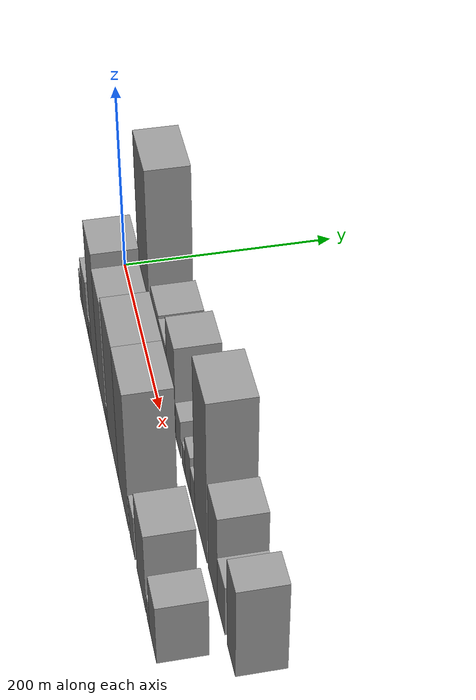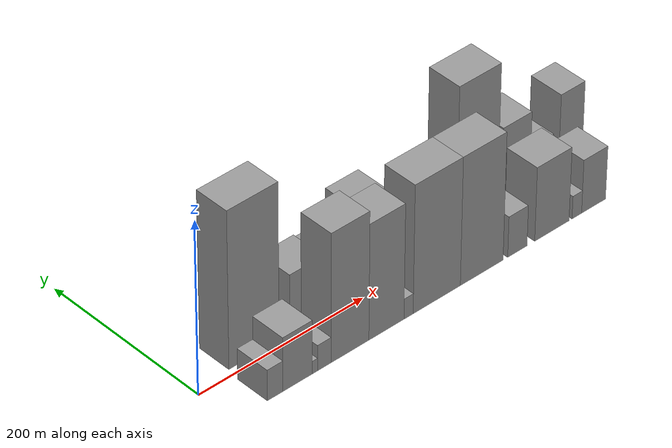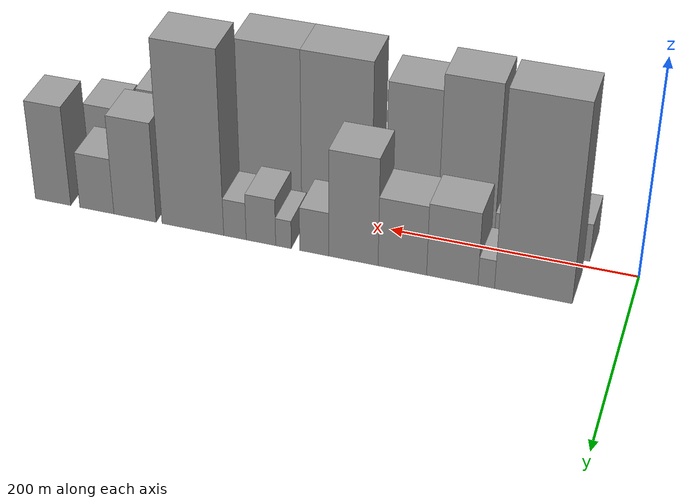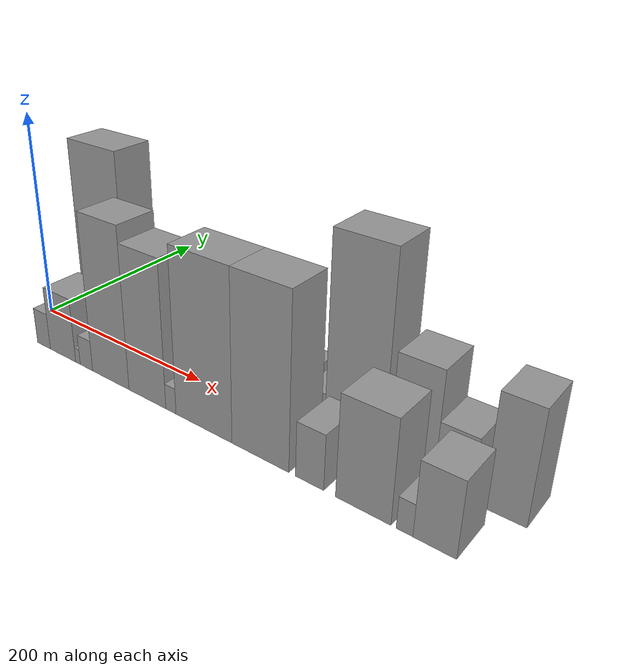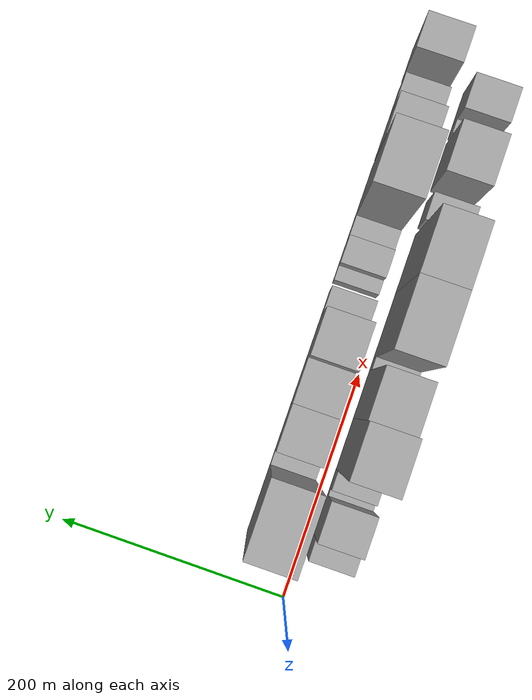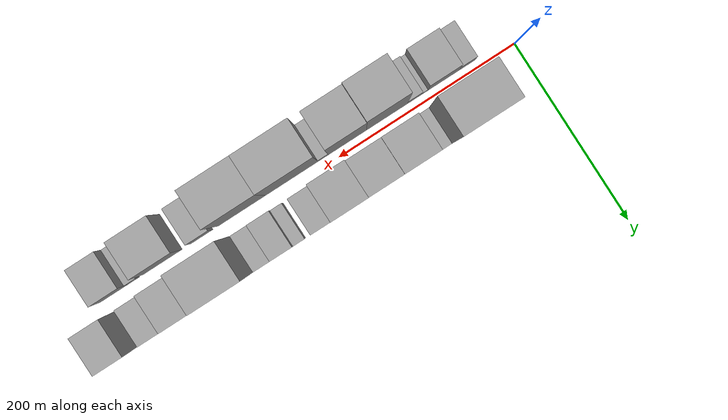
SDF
<sdf version="1.6">
 <world name="default">
  <scene>
   <sky><clouds><speed>12</speed></clouds></sky>
   <ambient>0.4 0.4 0.4 1</ambient>
   <background>0.7 0.7 0.7 1</background>
   <shadows>1</shadows>
  </scene>
  <gravity>0 0 -9.8066</gravity>
  <magnetic_field>6e-06 2.3e-05 -4.2e-05</magnetic_field>
  <physics default="0" name="default_physics" type="ode">
   <ode>
    <solver>
     <type>quick</type>
     <iters>10</iters>
     <sor>1.0</sor>
     <use_dynamic_moi_rescaling>0</use_dynamic_moi_rescaling>
    </solver>
    <constraints>
     <cfm>0</cfm>
     <erp>0.2</erp>
     <contact_max_correcting_vel>100</contact_max_correcting_vel>
     <contact_surface_layer>0.001</contact_surface_layer>
    </constraints>
   </ode>
   <max_step_size>0.004</max_step_size>
   <real_time_factor>1</real_time_factor>
   <real_time_update_rate>250</real_time_update_rate>
  </physics>
  <light name="sun" type="directional">
   <pose>0 0 10 0 0 0</pose>
   <diffuse>0.8 0.8 0.8 1</diffuse>
   <specular>0.2 0.2 0.2 1</specular>
   <attenuation>
    <range>1000</range>
    <constant>0.9</constant>
    <linear>0.01</linear>
    <quadratic>0.001</quadratic>
   </attenuation>
   <direction>-0.5 0.1 -0.9</direction>
  </light>
  <model name="building_1">
   <static>1</static>
   <pose>73.2922 27.5000 0 0.000000 0.000000 1.570796</pose>
   <link name="link">
    <pose>0 0 91.50 0 0 0</pose>
    <collision name="collision"><geometry><box><size>40.0000 60.5845 183.0000</size></box></geometry></collision>
    <visual name="visual">
     <cast_shadows>0</cast_shadows>
     <geometry><box><size>40.0000 60.5845 183.0000</size></box></geometry>
     <material>
      <script>
       <uri>model://grey_wall/materials/scripts</uri>
       <uri>model://grey_wall/materials/textures</uri>
       <name>vrc/grey_wall</name>
      </script>
     </material>
    </visual>
   </link>
  </model>
  <model name="building_2">
   <static>1</static>
   <pose>110.1360 27.5000 0 0.000000 0.000000 1.570796</pose>
   <link name="link">
    <pose>0 0 13.50 0 0 0</pose>
    <collision name="collision"><geometry><box><size>40.0000 13.1030 27.0000</size></box></geometry></collision>
    <visual name="visual">
     <cast_shadows>0</cast_shadows>
     <geometry><box><size>40.0000 13.1030 27.0000</size></box></geometry>
     <material>
      <script>
       <uri>model://grey_wall/materials/scripts</uri>
       <uri>model://grey_wall/materials/textures</uri>
       <name>vrc/grey_wall</name>
      </script>
     </material>
    </visual>
   </link>
  </model>
  <model name="building_3">
   <static>1</static>
   <pose>137.1209 27.5000 0 0.000000 0.000000 1.570796</pose>
   <link name="link">
    <pose>0 0 34.50 0 0 0</pose>
    <collision name="collision"><geometry><box><size>40.0000 40.8669 69.0000</size></box></geometry></collision>
    <visual name="visual">
     <cast_shadows>0</cast_shadows>
     <geometry><box><size>40.0000 40.8669 69.0000</size></box></geometry>
     <material>
      <script>
       <uri>model://grey_wall/materials/scripts</uri>
       <uri>model://grey_wall/materials/textures</uri>
       <name>vrc/grey_wall</name>
      </script>
     </material>
    </visual>
   </link>
  </model>
  <model name="building_4">
   <static>1</static>
   <pose>177.1733 27.5000 0 0.000000 0.000000 1.570796</pose>
   <link name="link">
    <pose>0 0 33.00 0 0 0</pose>
    <collision name="collision"><geometry><box><size>40.0000 39.2379 66.0000</size></box></geometry></collision>
    <visual name="visual">
     <cast_shadows>0</cast_shadows>
     <geometry><box><size>40.0000 39.2379 66.0000</size></box></geometry>
     <material>
      <script>
       <uri>model://grey_wall/materials/scripts</uri>
       <uri>model://grey_wall/materials/textures</uri>
       <name>vrc/grey_wall</name>
      </script>
     </material>
    </visual>
   </link>
  </model>
  <model name="building_5">
   <static>1</static>
   <pose>217.0349 27.5000 0 0.000000 0.000000 1.570796</pose>
   <link name="link">
    <pose>0 0 51.00 0 0 0</pose>
    <collision name="collision"><geometry><box><size>40.0000 40.4852 102.0000</size></box></geometry></collision>
    <visual name="visual">
     <cast_shadows>0</cast_shadows>
     <geometry><box><size>40.0000 40.4852 102.0000</size></box></geometry>
     <material>
      <script>
       <uri>model://grey_wall/materials/scripts</uri>
       <uri>model://grey_wall/materials/textures</uri>
       <name>vrc/grey_wall</name>
      </script>
     </material>
    </visual>
   </link>
  </model>
  <model name="building_6">
   <static>1</static>
   <pose>249.2175 27.5000 0 0.000000 0.000000 1.570796</pose>
   <link name="link">
    <pose>0 0 21.00 0 0 0</pose>
    <collision name="collision"><geometry><box><size>40.0000 23.8801 42.0000</size></box></geometry></collision>
    <visual name="visual">
     <cast_shadows>0</cast_shadows>
     <geometry><box><size>40.0000 23.8801 42.0000</size></box></geometry>
     <material>
      <script>
       <uri>model://grey_wall/materials/scripts</uri>
       <uri>model://grey_wall/materials/textures</uri>
       <name>vrc/grey_wall</name>
      </script>
     </material>
    </visual>
   </link>
  </model>
  <model name="building_7">
   <static>1</static>
   <pose>274.6905 27.5000 0 0.000000 0.000000 1.570796</pose>
   <link name="link">
    <pose>0 0 13.50 0 0 0</pose>
    <collision name="collision"><geometry><box><size>40.0000 13.0658 27.0000</size></box></geometry></collision>
    <visual name="visual">
     <cast_shadows>0</cast_shadows>
     <geometry><box><size>40.0000 13.0658 27.0000</size></box></geometry>
     <material>
      <script>
       <uri>model://grey_wall/materials/scripts</uri>
       <uri>model://grey_wall/materials/textures</uri>
       <name>vrc/grey_wall</name>
      </script>
     </material>
    </visual>
   </link>
  </model>
  <model name="building_8">
   <static>1</static>
   <pose>293.6197 27.5000 0 0.000000 0.000000 1.570796</pose>
   <link name="link">
    <pose>0 0 22.50 0 0 0</pose>
    <collision name="collision"><geometry><box><size>40.0000 24.7926 45.0000</size></box></geometry></collision>
    <visual name="visual">
     <cast_shadows>0</cast_shadows>
     <geometry><box><size>40.0000 24.7926 45.0000</size></box></geometry>
     <material>
      <script>
       <uri>model://grey_wall/materials/scripts</uri>
       <uri>model://grey_wall/materials/textures</uri>
       <name>vrc/grey_wall</name>
      </script>
     </material>
    </visual>
   </link>
  </model>
  <model name="building_9">
   <static>1</static>
   <pose>315.5268 27.5000 0 0.000000 0.000000 1.570796</pose>
   <link name="link">
    <pose>0 0 18.00 0 0 0</pose>
    <collision name="collision"><geometry><box><size>40.0000 19.0216 36.0000</size></box></geometry></collision>
    <visual name="visual">
     <cast_shadows>0</cast_shadows>
     <geometry><box><size>40.0000 19.0216 36.0000</size></box></geometry>
     <material>
      <script>
       <uri>model://grey_wall/materials/scripts</uri>
       <uri>model://grey_wall/materials/textures</uri>
       <name>vrc/grey_wall</name>
      </script>
     </material>
    </visual>
   </link>
  </model>
  <model name="building_10">
   <static>1</static>
   <pose>351.4854 27.5000 0 0.000000 0.000000 1.570796</pose>
   <link name="link">
    <pose>0 0 87.00 0 0 0</pose>
    <collision name="collision"><geometry><box><size>40.0000 52.8956 174.0000</size></box></geometry></collision>
    <visual name="visual">
     <cast_shadows>0</cast_shadows>
     <geometry><box><size>40.0000 52.8956 174.0000</size></box></geometry>
     <material>
      <script>
       <uri>model://grey_wall/materials/scripts</uri>
       <uri>model://grey_wall/materials/textures</uri>
       <name>vrc/grey_wall</name>
      </script>
     </material>
    </visual>
   </link>
  </model>
  <model name="building_11">
   <static>1</static>
   <pose>401.3773 27.5000 0 0.000000 0.000000 1.570796</pose>
   <link name="link">
    <pose>0 0 48.00 0 0 0</pose>
    <collision name="collision"><geometry><box><size>40.0000 36.8881 96.0000</size></box></geometry></collision>
    <visual name="visual">
     <cast_shadows>0</cast_shadows>
     <geometry><box><size>40.0000 36.8881 96.0000</size></box></geometry>
     <material>
      <script>
       <uri>model://grey_wall/materials/scripts</uri>
       <uri>model://grey_wall/materials/textures</uri>
       <name>vrc/grey_wall</name>
      </script>
     </material>
    </visual>
   </link>
  </model>
  <model name="building_12">
   <static>1</static>
   <pose>434.8382 27.5000 0 0.000000 0.000000 1.570796</pose>
   <link name="link">
    <pose>0 0 27.00 0 0 0</pose>
    <collision name="collision"><geometry><box><size>40.0000 30.0337 54.0000</size></box></geometry></collision>
    <visual name="visual">
     <cast_shadows>0</cast_shadows>
     <geometry><box><size>40.0000 30.0337 54.0000</size></box></geometry>
     <material>
      <script>
       <uri>model://grey_wall/materials/scripts</uri>
       <uri>model://grey_wall/materials/textures</uri>
       <name>vrc/grey_wall</name>
      </script>
     </material>
    </visual>
   </link>
  </model>
  <model name="building_13">
   <static>1</static>
   <pose>473.5929 27.5000 0 0.000000 0.000000 1.570796</pose>
   <link name="link">
    <pose>0 0 48.00 0 0 0</pose>
    <collision name="collision"><geometry><box><size>40.0000 31.4758 96.0000</size></box></geometry></collision>
    <visual name="visual">
     <cast_shadows>0</cast_shadows>
     <geometry><box><size>40.0000 31.4758 96.0000</size></box></geometry>
     <material>
      <script>
       <uri>model://grey_wall/materials/scripts</uri>
       <uri>model://grey_wall/materials/textures</uri>
       <name>vrc/grey_wall</name>
      </script>
     </material>
    </visual>
   </link>
  </model>
  <model name="building_14">
   <static>1</static>
   <pose>49.3180 -27.5000 0 0.000000 0.000000 1.570796</pose>
   <link name="link">
    <pose>0 0 18.00 0 0 0</pose>
    <collision name="collision"><geometry><box><size>40.0000 18.6360 36.0000</size></box></geometry></collision>
    <visual name="visual">
     <cast_shadows>0</cast_shadows>
     <geometry><box><size>40.0000 18.6360 36.0000</size></box></geometry>
     <material>
      <script>
       <uri>model://grey_wall/materials/scripts</uri>
       <uri>model://grey_wall/materials/textures</uri>
       <name>vrc/grey_wall</name>
      </script>
     </material>
    </visual>
   </link>
  </model>
  <model name="building_15">
   <static>1</static>
   <pose>76.4230 -27.5000 0 0.000000 0.000000 1.570796</pose>
   <link name="link">
    <pose>0 0 31.50 0 0 0</pose>
    <collision name="collision"><geometry><box><size>40.0000 35.5740 63.0000</size></box></geometry></collision>
    <visual name="visual">
     <cast_shadows>0</cast_shadows>
     <geometry><box><size>40.0000 35.5740 63.0000</size></box></geometry>
     <material>
      <script>
       <uri>model://grey_wall/materials/scripts</uri>
       <uri>model://grey_wall/materials/textures</uri>
       <name>vrc/grey_wall</name>
      </script>
     </material>
    </visual>
   </link>
  </model>
  <model name="building_16">
   <static>1</static>
   <pose>97.2860 -27.5000 0 0.000000 0.000000 1.570796</pose>
   <link name="link">
    <pose>0 0 7.50 0 0 0</pose>
    <collision name="collision"><geometry><box><size>40.0000 6.1520 15.0000</size></box></geometry></collision>
    <visual name="visual">
     <cast_shadows>0</cast_shadows>
     <geometry><box><size>40.0000 6.1520 15.0000</size></box></geometry>
     <material>
      <script>
       <uri>model://grey_wall/materials/scripts</uri>
       <uri>model://grey_wall/materials/textures</uri>
       <name>vrc/grey_wall</name>
      </script>
     </material>
    </visual>
   </link>
  </model>
  <model name="building_17">
   <static>1</static>
   <pose>108.6470 -27.5000 0 0.000000 0.000000 1.570796</pose>
   <link name="link">
    <pose>0 0 15.00 0 0 0</pose>
    <collision name="collision"><geometry><box><size>40.0000 16.5701 30.0000</size></box></geometry></collision>
    <visual name="visual">
     <cast_shadows>0</cast_shadows>
     <geometry><box><size>40.0000 16.5701 30.0000</size></box></geometry>
     <material>
      <script>
       <uri>model://grey_wall/materials/scripts</uri>
       <uri>model://grey_wall/materials/textures</uri>
       <name>vrc/grey_wall</name>
      </script>
     </material>
    </visual>
   </link>
  </model>
  <model name="building_18">
   <static>1</static>
   <pose>140.0905 -27.5000 0 0.000000 0.000000 1.570796</pose>
   <link name="link">
    <pose>0 0 75.00 0 0 0</pose>
    <collision name="collision"><geometry><box><size>40.0000 46.3169 150.0000</size></box></geometry></collision>
    <visual name="visual">
     <cast_shadows>0</cast_shadows>
     <geometry><box><size>40.0000 46.3169 150.0000</size></box></geometry>
     <material>
      <script>
       <uri>model://grey_wall/materials/scripts</uri>
       <uri>model://grey_wall/materials/textures</uri>
       <name>vrc/grey_wall</name>
      </script>
     </material>
    </visual>
   </link>
  </model>
  <model name="building_19">
   <static>1</static>
   <pose>185.0102 -27.5000 0 0.000000 0.000000 1.570796</pose>
   <link name="link">
    <pose>0 0 67.50 0 0 0</pose>
    <collision name="collision"><geometry><box><size>40.0000 43.5224 135.0000</size></box></geometry></collision>
    <visual name="visual">
     <cast_shadows>0</cast_shadows>
     <geometry><box><size>40.0000 43.5224 135.0000</size></box></geometry>
     <material>
      <script>
       <uri>model://grey_wall/materials/scripts</uri>
       <uri>model://grey_wall/materials/textures</uri>
       <name>vrc/grey_wall</name>
      </script>
     </material>
    </visual>
   </link>
  </model>
  <model name="building_20">
   <static>1</static>
   <pose>212.4921 -27.5000 0 0.000000 0.000000 1.570796</pose>
   <link name="link">
    <pose>0 0 12.00 0 0 0</pose>
    <collision name="collision"><geometry><box><size>40.0000 11.4414 24.0000</size></box></geometry></collision>
    <visual name="visual">
     <cast_shadows>0</cast_shadows>
     <geometry><box><size>40.0000 11.4414 24.0000</size></box></geometry>
     <material>
      <script>
       <uri>model://grey_wall/materials/scripts</uri>
       <uri>model://grey_wall/materials/textures</uri>
       <name>vrc/grey_wall</name>
      </script>
     </material>
    </visual>
   </link>
  </model>
  <model name="building_21">
   <static>1</static>
   <pose>247.9169 -27.5000 0 0.000000 0.000000 1.570796</pose>
   <link name="link">
    <pose>0 0 75.00 0 0 0</pose>
    <collision name="collision"><geometry><box><size>40.0000 59.4081 150.0000</size></box></geometry></collision>
    <visual name="visual">
     <cast_shadows>0</cast_shadows>
     <geometry><box><size>40.0000 59.4081 150.0000</size></box></geometry>
     <material>
      <script>
       <uri>model://grey_wall/materials/scripts</uri>
       <uri>model://grey_wall/materials/textures</uri>
       <name>vrc/grey_wall</name>
      </script>
     </material>
    </visual>
   </link>
  </model>
  <model name="building_22">
   <static>1</static>
   <pose>304.8760 -27.5000 0 0.000000 0.000000 1.570796</pose>
   <link name="link">
    <pose>0 0 75.00 0 0 0</pose>
    <collision name="collision"><geometry><box><size>40.0000 54.5101 150.0000</size></box></geometry></collision>
    <visual name="visual">
     <cast_shadows>0</cast_shadows>
     <geometry><box><size>40.0000 54.5101 150.0000</size></box></geometry>
     <material>
      <script>
       <uri>model://grey_wall/materials/scripts</uri>
       <uri>model://grey_wall/materials/textures</uri>
       <name>vrc/grey_wall</name>
      </script>
     </material>
    </visual>
   </link>
  </model>
  <model name="building_23">
   <static>1</static>
   <pose>350.5802 -27.5000 0 0.000000 0.000000 1.570796</pose>
   <link name="link">
    <pose>0 0 24.00 0 0 0</pose>
    <collision name="collision"><geometry><box><size>40.0000 24.8983 48.0000</size></box></geometry></collision>
    <visual name="visual">
     <cast_shadows>0</cast_shadows>
     <geometry><box><size>40.0000 24.8983 48.0000</size></box></geometry>
     <material>
      <script>
       <uri>model://grey_wall/materials/scripts</uri>
       <uri>model://grey_wall/materials/textures</uri>
       <name>vrc/grey_wall</name>
      </script>
     </material>
    </visual>
   </link>
  </model>
  <model name="building_24">
   <static>1</static>
   <pose>395.3778 -27.5000 0 0.000000 0.000000 1.570796</pose>
   <link name="link">
    <pose>0 0 43.50 0 0 0</pose>
    <collision name="collision"><geometry><box><size>40.0000 44.6970 87.0000</size></box></geometry></collision>
    <visual name="visual">
     <cast_shadows>0</cast_shadows>
     <geometry><box><size>40.0000 44.6970 87.0000</size></box></geometry>
     <material>
      <script>
       <uri>model://grey_wall/materials/scripts</uri>
       <uri>model://grey_wall/materials/textures</uri>
       <name>vrc/grey_wall</name>
      </script>
     </material>
    </visual>
   </link>
  </model>
  <model name="building_25">
   <static>1</static>
   <pose>428.0193 -27.5000 0 0.000000 0.000000 1.570796</pose>
   <link name="link">
    <pose>0 0 13.50 0 0 0</pose>
    <collision name="collision"><geometry><box><size>40.0000 12.5859 27.0000</size></box></geometry></collision>
    <visual name="visual">
     <cast_shadows>0</cast_shadows>
     <geometry><box><size>40.0000 12.5859 27.0000</size></box></geometry>
     <material>
      <script>
       <uri>model://grey_wall/materials/scripts</uri>
       <uri>model://grey_wall/materials/textures</uri>
       <name>vrc/grey_wall</name>
      </script>
     </material>
    </visual>
   </link>
  </model>
  <model name="building_26">
   <static>1</static>
   <pose>450.1193 -27.5000 0 0.000000 0.000000 1.570796</pose>
   <link name="link">
    <pose>0 0 31.50 0 0 0</pose>
    <collision name="collision"><geometry><box><size>40.0000 31.6143 63.0000</size></box></geometry></collision>
    <visual name="visual">
     <cast_shadows>0</cast_shadows>
     <geometry><box><size>40.0000 31.6143 63.0000</size></box></geometry>
     <material>
      <script>
       <uri>model://grey_wall/materials/scripts</uri>
       <uri>model://grey_wall/materials/textures</uri>
       <name>vrc/grey_wall</name>
      </script>
     </material>
    </visual>
   </link>
  </model>
 </world>
</sdf>
